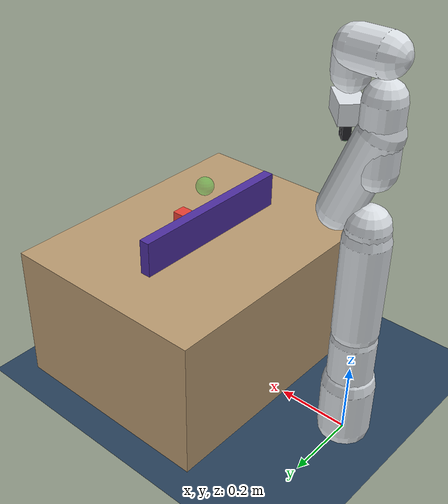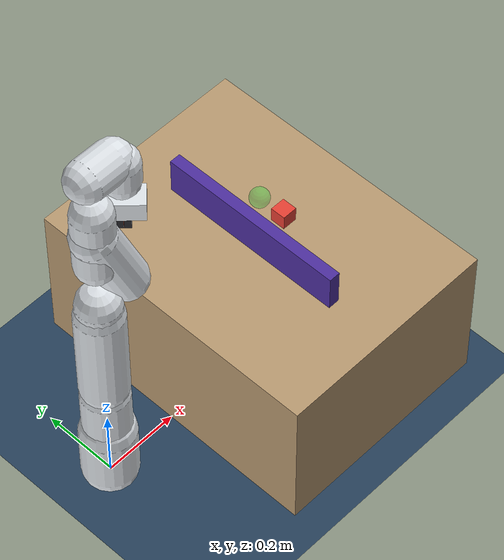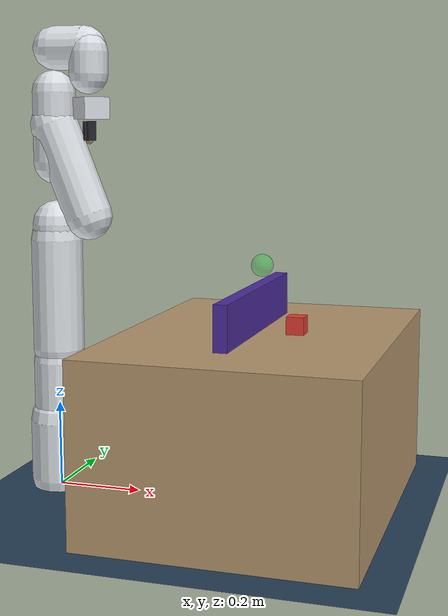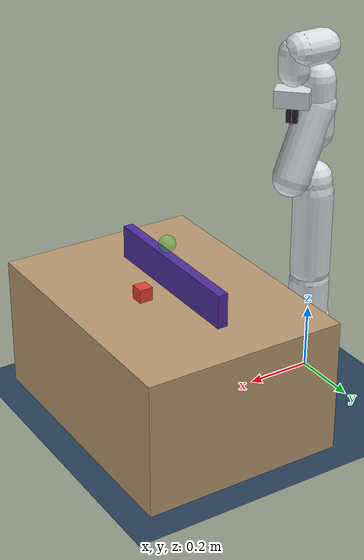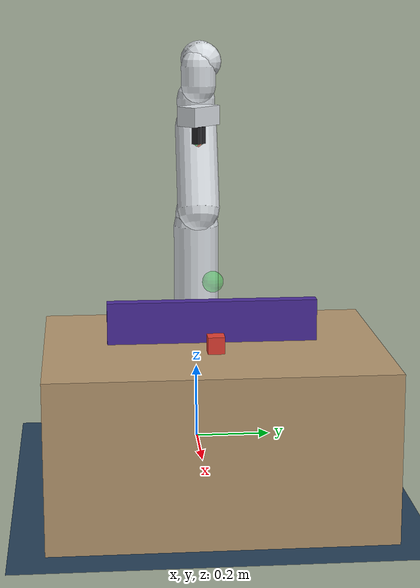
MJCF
<mujoco model="panda_obstacle_scene">

  <include file="panda_scene.xml"/>

  <asset>
    <!-- Deliberately the highest-contrast colour in the scene: it must be
         unmistakable in scripts/enjoy.py against a tan table, a red cube and a
         translucent green goal marker. -->
    <material name="obstacle_mat" rgba="0.30 0.18 0.62 1" specular="0.4"
              reflectance="0.05"/>
  </asset>

  <worldbody>
    <geom name="obstacle" type="box" pos="0.48 0 0.45" size="0.015 0.25 0.05"
          material="obstacle_mat" contype="2" conaffinity="2" condim="3"
          friction="0.8 0.05 0.01"/>
  </worldbody>
</mujoco>

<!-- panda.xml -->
<mujoco model="panda">

  <compiler angle="radian" autolimits="true"/>

  <default>
    <default class="panda">
      <joint axis="0 0 1" damping="5" armature="0.1" frictionloss="0.2"/>
      <geom type="capsule" contype="1" conaffinity="2" condim="4"
            friction="1 0.05 0.01" rgba="0.87 0.89 0.91 1" density="0"/>
      <motor gear="1" ctrllimited="true"/>

      <default class="panda_finger">
        <joint type="slide" axis="0 1 0" range="0 0.04" damping="30"
               armature="0.01" frictionloss="1.0"/>
        <!-- High tangential friction: primitive box pads have far less real
             contact area than the rubberized Franka pads, so grasps slip
             without it. -->
        <geom type="box" condim="4" friction="2.0 0.2 0.01"
              rgba="0.15 0.15 0.17 1" density="0"/>
      </default>
    </default>
  </default>

  <worldbody>
    <body name="link0" pos="0 0 0" childclass="panda">
      <inertial pos="-0.041 0 0.05" mass="2.92"
                diaginertia="0.0075 0.0100 0.0090"/>
      <geom name="link0_geom" fromto="0 0 0.02 0 0 0.16" size="0.07"/>

      <body name="link1" pos="0 0 0.333">
        <inertial pos="0.0039 0.0021 -0.0476" mass="2.74"
                  diaginertia="0.0180 0.0180 0.0090"/>
        <joint name="joint1" range="-2.8973 2.8973"/>
        <geom name="link1_geom" fromto="0 0 -0.19 0 0 -0.03" size="0.06"/>

        <body name="link2" quat="1 -1 0 0">
          <inertial pos="-0.0031 -0.0287 0.0035" mass="2.74"
                    diaginertia="0.0180 0.0090 0.0180"/>
          <joint name="joint2" range="-1.7628 1.7628"/>
          <geom name="link2_geom" fromto="0 0 0 0 -0.26 0" size="0.06"/>

          <body name="link3" pos="0 -0.316 0" quat="1 1 0 0">
            <inertial pos="0.0275 0.0393 -0.0665" mass="2.38"
                      diaginertia="0.0090 0.0090 0.0090"/>
            <joint name="joint3" range="-2.8973 2.8973"/>
            <geom name="link3_geom" fromto="0 0 -0.14 0 0 -0.02" size="0.055"/>

            <body name="link4" pos="0.0825 0 0" quat="1 1 0 0">
              <inertial pos="-0.0532 0.1044 0.0275" mass="2.38"
                        diaginertia="0.0090 0.0090 0.0090"/>
              <joint name="joint4" range="-3.0718 -0.0698"/>
              <geom name="link4_geom" fromto="0 0 0 -0.083 0.21 0" size="0.055"/>

              <body name="link5" pos="-0.0825 0.384 0" quat="1 -1 0 0">
                <inertial pos="-0.0120 0.0411 -0.0384" mass="2.74"
                          diaginertia="0.0290 0.0290 0.0060"/>
                <joint name="joint5" range="-2.8973 2.8973"/>
                <geom name="link5_geom" fromto="0 0 -0.26 0 0 -0.10" size="0.05"/>

                <body name="link6" quat="1 1 0 0">
                  <inertial pos="0.0601 -0.0141 -0.0105" mass="1.55"
                            diaginertia="0.0030 0.0030 0.0030"/>
                  <joint name="joint6" range="-0.0175 3.7525"/>
                  <geom name="link6_geom" fromto="0 0 -0.01 0.075 0 -0.01" size="0.05"/>

                  <body name="link7" pos="0.088 0 0" quat="1 1 0 0">
                    <inertial pos="0.0105 -0.0043 0.0616" mass="0.54"
                              diaginertia="0.0008 0.0008 0.0008"/>
                    <joint name="joint7" range="-2.8973 2.8973"/>
                    <geom name="link7_geom" fromto="0 0 0.01 0 0 0.06" size="0.045"/>

                    <!-- Flange -> hand: 0.107 m along z, rotated -45 deg about z. -->
                    <body name="hand" pos="0 0 0.107" quat="0.9238795 0 0 -0.3826834">
                      <inertial pos="-0.01 0 0.03" mass="0.73"
                                diaginertia="0.0018 0.0025 0.0017"/>
                      <geom name="hand_geom" type="box" size="0.03 0.05 0.025"
                            pos="0 0 0.03"/>

                      <!-- Tool centre point: midway between the finger pads at
                           the closed width. All reward distances use this. -->
                      <site name="eef_site" pos="0 0 0.1034" size="0.008"
                            rgba="1 0.3 0.1 0.6" group="1"/>
                      <site name="hand_site" pos="0 0 0.03" size="0.006"
                            rgba="0.2 0.6 1 0.4" group="1"/>

                      <camera name="wristview" pos="0.05 0 0.02"
                              xyaxes="0 -1 0 -0.970 0 -0.243" fovy="75"/>

                      <body name="left_finger" pos="0 0 0.0584" childclass="panda_finger">
                        <inertial pos="0 0.0145 0.0227" mass="0.015"
                                  diaginertia="2.4e-6 2.4e-6 2.4e-6"/>
                        <joint name="finger_joint1"/>
                        <geom name="left_finger_geom" size="0.010 0.008 0.022"
                              pos="0 0.0085 0.023"/>
                        <site name="left_finger_tip" pos="0 0.0085 0.045"
                              size="0.005" rgba="0.1 1 0.3 0.5" group="1"/>
                      </body>

                      <body name="right_finger" pos="0 0 0.0584" childclass="panda_finger">
                        <inertial pos="0 -0.0145 0.0227" mass="0.015"
                                  diaginertia="2.4e-6 2.4e-6 2.4e-6"/>
                        <joint name="finger_joint2" axis="0 -1 0"/>
                        <geom name="right_finger_geom" size="0.010 0.008 0.022"
                              pos="0 -0.0085 0.023"/>
                        <site name="right_finger_tip" pos="0 -0.0085 0.045"
                              size="0.005" rgba="0.1 1 0.3 0.5" group="1"/>
                      </body>
                    </body>
                  </body>
                </body>
              </body>
            </body>
          </body>
        </body>
      </body>
    </body>
  </worldbody>

  <actuator>
    <motor class="panda" name="actuator1" joint="joint1" ctrlrange="-87 87"/>
    <motor class="panda" name="actuator2" joint="joint2" ctrlrange="-87 87"/>
    <motor class="panda" name="actuator3" joint="joint3" ctrlrange="-87 87"/>
    <motor class="panda" name="actuator4" joint="joint4" ctrlrange="-87 87"/>
    <motor class="panda" name="actuator5" joint="joint5" ctrlrange="-12 12"/>
    <motor class="panda" name="actuator6" joint="joint6" ctrlrange="-12 12"/>
    <motor class="panda" name="actuator7" joint="joint7" ctrlrange="-12 12"/>

    <!-- Fingers are position-servoed; the policy commands one shared width. -->
    <position name="actuator_finger1" joint="finger_joint1" ctrlrange="0 0.04"
              kp="3000" forcerange="-100 100"/>
    <position name="actuator_finger2" joint="finger_joint2" ctrlrange="0 0.04"
              kp="3000" forcerange="-100 100"/>
  </actuator>
</mujoco>

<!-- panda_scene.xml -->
<mujoco model="panda_manipulation_scene">

  <include file="robots/panda/panda.xml"/>

  <option timestep="0.002" integrator="implicitfast" cone="elliptic"
          impratio="10" iterations="100" solver="Newton" tolerance="1e-10">
    <!-- elliptic cone + impratio 10 gives grasps that hold instead of creeping;
         the default pyramidal cone lets boxes slide out of the fingers. -->
    <flag multiccd="enable"/>
  </option>

  <statistic center="0.4 0 0.4" extent="1.2" meansize="0.05"/>

  <visual>
    <headlight diffuse="0.55 0.55 0.55" ambient="0.35 0.35 0.35" specular="0 0 0"/>
    <rgba haze="0.15 0.25 0.35 1"/>
    <global azimuth="140" elevation="-25" offwidth="1280" offheight="960"/>
    <quality shadowsize="4096"/>
  </visual>

  <asset>
    <texture type="skybox" builtin="gradient" rgb1="0.3 0.5 0.7"
             rgb2="0 0 0" width="512" height="3072"/>
    <texture type="2d" name="groundplane" builtin="checker" mark="edge"
             rgb1="0.2 0.3 0.4" rgb2="0.1 0.2 0.3" markrgb="0.8 0.8 0.8"
             width="300" height="300"/>
    <material name="groundplane" texture="groundplane" texuniform="true"
              texrepeat="5 5" reflectance="0.15"/>
    <material name="table_mat" rgba="0.72 0.60 0.44 1" reflectance="0.05"/>
    <material name="object_mat" rgba="0.90 0.25 0.20 1" specular="0.3"/>
  </asset>

  <worldbody>
    <light pos="0.5 0 2.2" dir="0 0 -1" directional="true"
           diffuse="0.5 0.5 0.5" specular="0.1 0.1 0.1"/>
    <light pos="1.2 -0.8 1.6" dir="-0.5 0.4 -0.8" diffuse="0.3 0.3 0.3"/>

    <geom name="floor" type="plane" size="0 0 0.05" material="groundplane"
          contype="2" conaffinity="2" condim="3"/>

    <!-- Static table. Top face at z = 0.4 (pos.z + size.z = 0.2 + 0.2). -->
    <body name="table" pos="0.5 0 0.2">
      <geom name="table_top" type="box" size="0.30 0.40 0.20"
            material="table_mat" contype="2" conaffinity="2" condim="4"
            friction="1.0 0.05 0.01"/>
    </body>

    <body name="object" pos="0.58 0 0.42">
      <freejoint name="object_joint"/>
      <inertial pos="0 0 0" mass="0.05" diaginertia="1.4e-5 1.4e-5 1.4e-5"/>
      <geom name="object_geom" type="box" size="0.02 0.02 0.02"
            material="object_mat" contype="2" conaffinity="3" condim="4"
            friction="1.2 0.1 0.01" solimp="0.98 0.99 0.001" solref="0.005 1"/>
      <site name="object_site" pos="0 0 0" size="0.006"
            rgba="1 1 0 0.5" group="1"/>
    </body>

    <site name="goal_site" pos="0.5 0 0.55" size="0.025" type="sphere"
          rgba="0.1 0.9 0.2 0.35" group="1"/>

    <camera name="frontview" mode="targetbody" target="table" pos="1.7 0 1.0"/>
    <camera name="sideview" mode="targetbody" target="table" pos="0.5 -1.5 1.0"/>
    <camera name="topview" pos="0.5 0 1.6" xyaxes="1 0 0 0 1 0"/>
    <camera name="cornerview" mode="targetbody" target="table" pos="1.3 -1.1 1.1"/>
  </worldbody>

  <keyframe>
    <key name="home"
         qpos="0 -0.785 0 -2.356 0 1.571 0.785 0.04 0.04 0.58 0 0.42 1 0 0 0"
         ctrl="0 0 0 0 0 0 0 0.04 0.04"/>
  </keyframe>
</mujoco>
